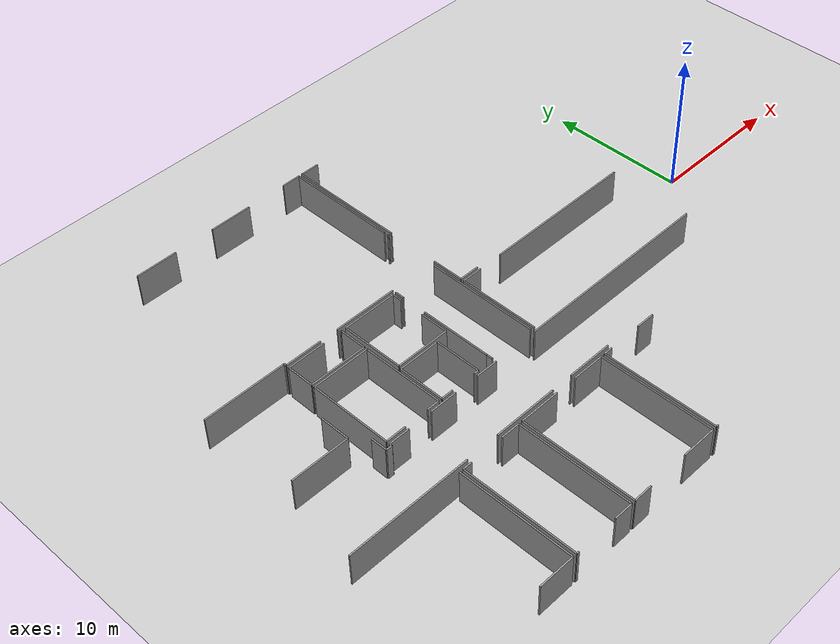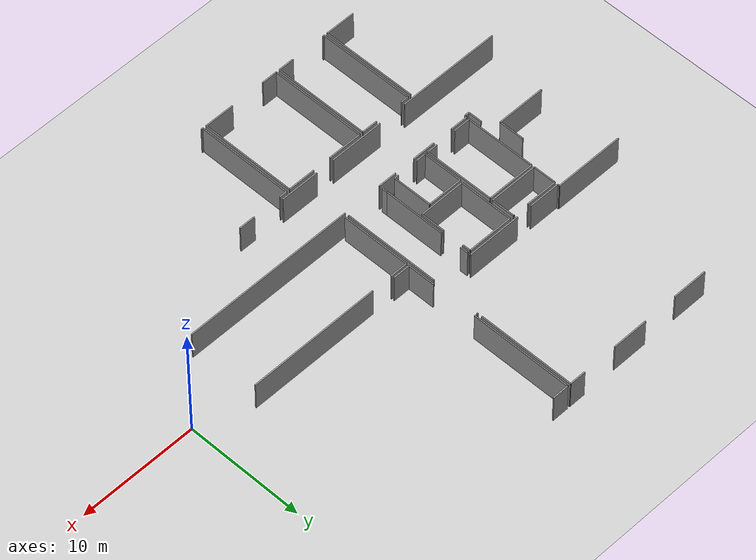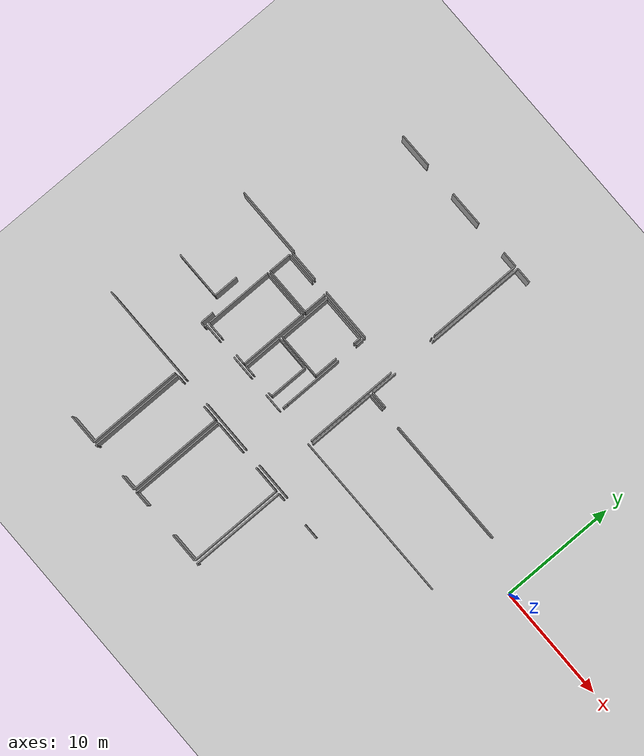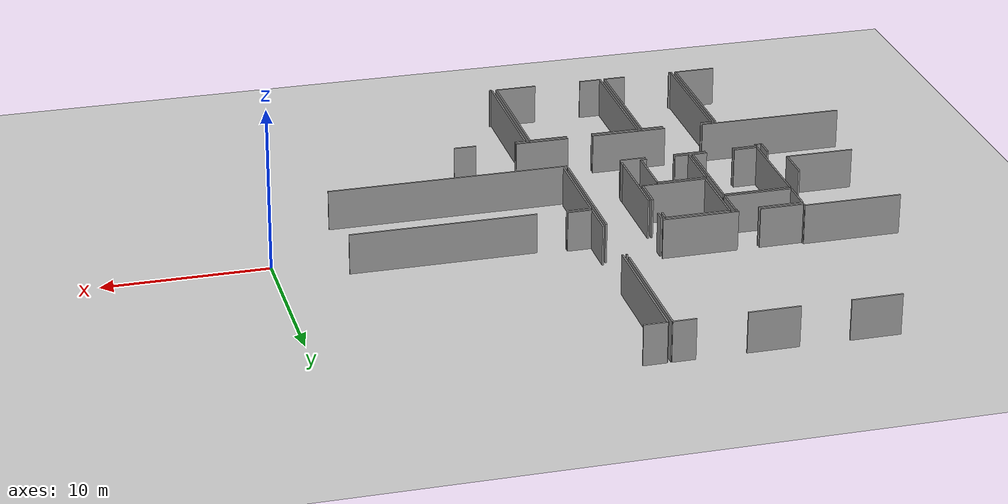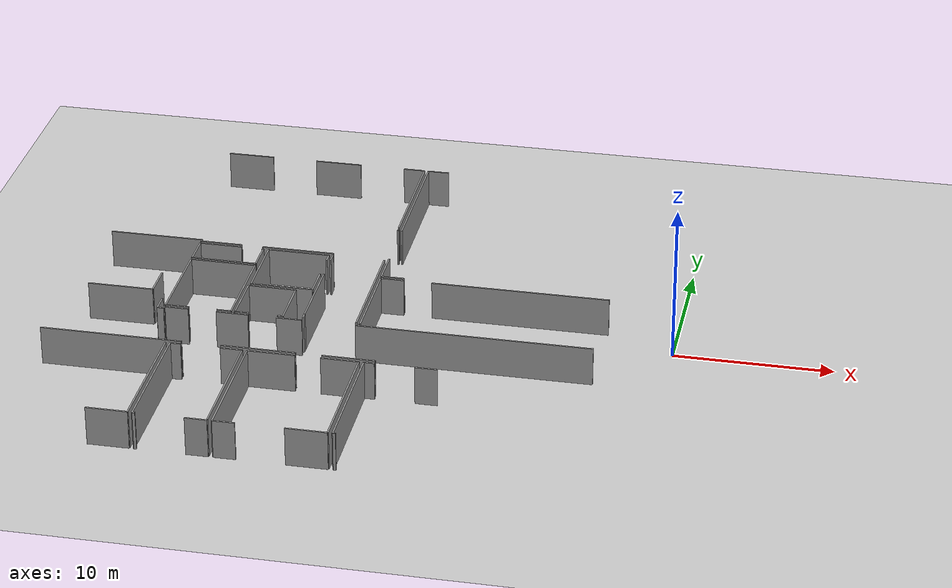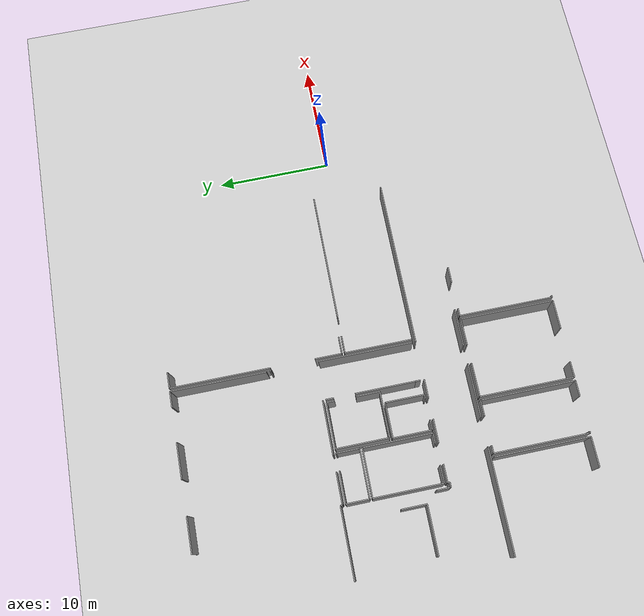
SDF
<sdf version="1.6">
 <world name="default">
  <model name="ground_plane">
   <static>1</static>
   <link name="link">
    <collision name="collision">
     <geometry><plane><normal>0 0 1</normal><size>100 100</size></plane></geometry>
     <surface><friction><ode><mu>100</mu><mu2>50</mu2></ode></friction></surface>
    </collision>
    <visual name="visual">
     <cast_shadows>0</cast_shadows>
     <geometry><plane><normal>0 0 1</normal><size>100 100</size></plane></geometry>
     <material>
      <script><uri>file://media/materials/scripts/gazebo.material</uri><name>Gazebo/Grey</name></script>
     </material>
    </visual>
   </link>
  </model>
  <model name="50041174">
   <static>1</static>
   <link name="Wall_21">
    <collision name="Wall_21_Collision">
     <geometry><box><size>8.1987814166 0.1 2.5</size></box></geometry>
     <pose>4.0993907083 0 1.25 0 0 0</pose>
    </collision>
    <visual name="Wall_21_Visual">
     <pose>4.0993907083 0 1.25 0 0 0</pose>
     <geometry><box><size>8.1987814166 0.1 2.5</size></box></geometry>
     <material>
      <script><uri>file://media/materials/scripts/gazebo.material</uri><name>Gazebo/Grey</name></script>
      <ambient>1 1 1 1</ambient>
     </material>
    </visual>
    <pose>36.6991622239 -25.30972328 0 0 0 -1.57079632679</pose>
   </link>
   <link name="Wall_22">
    <collision name="Wall_22_Collision">
     <geometry><box><size>2.57781162732 0.1 2.5</size></box></geometry>
     <pose>1.28890581366 0 1.25 0 0 0</pose>
    </collision>
    <visual name="Wall_22_Visual">
     <pose>1.28890581366 0 1.25 0 0 0</pose>
     <geometry><box><size>2.57781162732 0.1 2.5</size></box></geometry>
     <material>
      <script><uri>file://media/materials/scripts/gazebo.material</uri><name>Gazebo/Grey</name></script>
      <ambient>1 1 1 1</ambient>
     </material>
    </visual>
    <pose>36.6991622239 -33.5085046966 0 0 0 3.14159265359</pose>
   </link>
   <link name="Wall_25">
    <collision name="Wall_25_Collision">
     <geometry><box><size>8.21769484641 0.1 2.5</size></box></geometry>
     <pose>4.1088474232 0 1.25 0 0 0</pose>
    </collision>
    <visual name="Wall_25_Visual">
     <pose>4.1088474232 0 1.25 0 0 0</pose>
     <geometry><box><size>8.21769484641 0.1 2.5</size></box></geometry>
     <material>
      <script><uri>file://media/materials/scripts/gazebo.material</uri><name>Gazebo/Grey</name></script>
      <ambient>1 1 1 1</ambient>
     </material>
    </visual>
    <pose>36.982863671 -33.5272911907 0 0 0 1.57079632679</pose>
   </link>
   <link name="Wall_26">
    <collision name="Wall_26_Collision">
     <geometry><box><size>0.662096978929 0.1 2.5</size></box></geometry>
     <pose>0.331048489464 0 1.25 0 0 0</pose>
    </collision>
    <visual name="Wall_26_Visual">
     <pose>0.331048489464 0 1.25 0 0 0</pose>
     <geometry><box><size>0.662096978929 0.1 2.5</size></box></geometry>
     <material>
      <script><uri>file://media/materials/scripts/gazebo.material</uri><name>Gazebo/Grey</name></script>
      <ambient>1 1 1 1</ambient>
     </material>
    </visual>
    <pose>36.982863671 -25.3095963442 0 0 0 0.0</pose>
   </link>
   <link name="Wall_27">
    <collision name="Wall_27_Collision">
     <geometry><box><size>1.37255648642 0.1 2.5</size></box></geometry>
     <pose>0.686278243209 0 1.25 0 0 0</pose>
    </collision>
    <visual name="Wall_27_Visual">
     <pose>0.686278243209 0 1.25 0 0 0</pose>
     <geometry><box><size>1.37255648642 0.1 2.5</size></box></geometry>
     <material>
      <script><uri>file://media/materials/scripts/gazebo.material</uri><name>Gazebo/Grey</name></script>
      <ambient>1 1 1 1</ambient>
     </material>
    </visual>
    <pose>40.1141152577 -25.3095963442 0 0 0 0.0</pose>
   </link>
   <link name="Wall_28">
    <collision name="Wall_28_Collision">
     <geometry><box><size>8.20842853516 0.1 2.5</size></box></geometry>
     <pose>4.10421426758 0 1.25 0 0 0</pose>
    </collision>
    <visual name="Wall_28_Visual">
     <pose>4.10421426758 0 1.25 0 0 0</pose>
     <geometry><box><size>8.20842853516 0.1 2.5</size></box></geometry>
     <material>
      <script><uri>file://media/materials/scripts/gazebo.material</uri><name>Gazebo/Grey</name></script>
      <ambient>1 1 1 1</ambient>
     </material>
    </visual>
    <pose>41.4866717441 -25.3095963442 0 0 0 -1.57079632679</pose>
   </link>
   <link name="Wall_29">
    <collision name="Wall_29_Collision">
     <geometry><box><size>1.36646356943 0.1 2.5</size></box></geometry>
     <pose>0.683231784717 0 1.25 0 0 0</pose>
    </collision>
    <visual name="Wall_29_Visual">
     <pose>0.683231784717 0 1.25 0 0 0</pose>
     <geometry><box><size>1.36646356943 0.1 2.5</size></box></geometry>
     <material>
      <script><uri>file://media/materials/scripts/gazebo.material</uri><name>Gazebo/Grey</name></script>
      <ambient>1 1 1 1</ambient>
     </material>
    </visual>
    <pose>41.4866717441 -33.5180248794 0 0 0 3.14159265359</pose>
   </link>
   <link name="Wall_30">
    <collision name="Wall_30_Collision">
     <geometry><box><size>0.16464278967 0.1 2.5</size></box></geometry>
     <pose>0.0823213948351 0 1.25 0 0 0</pose>
    </collision>
    <visual name="Wall_30_Visual">
     <pose>0.0823213948351 0 1.25 0 0 0</pose>
     <geometry><box><size>0.16464278967 0.1 2.5</size></box></geometry>
     <material>
      <script><uri>file://media/materials/scripts/gazebo.material</uri><name>Gazebo/Grey</name></script>
      <ambient>1 1 1 1</ambient>
     </material>
    </visual>
    <pose>37.1472454938 -33.5180248794 0 0 0 -3.08528159239</pose>
   </link>
   <link name="Wall_31">
    <collision name="Wall_31_Collision">
     <geometry><box><size>8.20500126936 0.1 2.5</size></box></geometry>
     <pose>4.10250063468 0 1.25 0 0 0</pose>
    </collision>
    <visual name="Wall_31_Visual">
     <pose>4.10250063468 0 1.25 0 0 0</pose>
     <geometry><box><size>8.20500126936 0.1 2.5</size></box></geometry>
     <material>
      <script><uri>file://media/materials/scripts/gazebo.material</uri><name>Gazebo/Grey</name></script>
      <ambient>1 1 1 1</ambient>
     </material>
    </visual>
    <pose>41.7788778878 -33.5200558517 0 0 0 1.57079632679</pose>
   </link>
   <link name="Wall_32">
    <collision name="Wall_32_Collision">
     <geometry><box><size>2.95443005839 0.1 2.5</size></box></geometry>
     <pose>1.4772150292 0 1.25 0 0 0</pose>
    </collision>
    <visual name="Wall_32_Visual">
     <pose>1.4772150292 0 1.25 0 0 0</pose>
     <geometry><box><size>2.95443005839 0.1 2.5</size></box></geometry>
     <material>
      <script><uri>file://media/materials/scripts/gazebo.material</uri><name>Gazebo/Grey</name></script>
      <ambient>1 1 1 1</ambient>
     </material>
    </visual>
    <pose>41.7788778878 -25.3150545824 0 0 0 0.0</pose>
   </link>
   <link name="Wall_33">
    <collision name="Wall_33_Collision">
     <geometry><box><size>2.35313531353 0.1 2.5</size></box></geometry>
     <pose>1.17656765677 0 1.25 0 0 0</pose>
    </collision>
    <visual name="Wall_33_Visual">
     <pose>1.17656765677 0 1.25 0 0 0</pose>
     <geometry><box><size>2.35313531353 0.1 2.5</size></box></geometry>
     <material>
      <script><uri>file://media/materials/scripts/gazebo.material</uri><name>Gazebo/Grey</name></script>
      <ambient>1 1 1 1</ambient>
     </material>
    </visual>
    <pose>46.3238131505 -25.3150545824 0 0 0 0.0</pose>
   </link>
   <link name="Wall_34">
    <collision name="Wall_34_Collision">
     <geometry><box><size>8.19345011424 0.1 2.5</size></box></geometry>
     <pose>4.09672505712 0 1.25 0 0 0</pose>
    </collision>
    <visual name="Wall_34_Visual">
     <pose>4.09672505712 0 1.25 0 0 0</pose>
     <geometry><box><size>8.19345011424 0.1 2.5</size></box></geometry>
     <material>
      <script><uri>file://media/materials/scripts/gazebo.material</uri><name>Gazebo/Grey</name></script>
      <ambient>1 1 1 1</ambient>
     </material>
    </visual>
    <pose>48.6769484641 -25.3150545824 0 0 0 -1.57079632679</pose>
   </link>
   <link name="Wall_35">
    <collision name="Wall_35_Collision">
     <geometry><box><size>2.56143691292 0.1 2.5</size></box></geometry>
     <pose>1.28071845646 0 1.25 0 0 0</pose>
    </collision>
    <visual name="Wall_35_Visual">
     <pose>1.28071845646 0 1.25 0 0 0</pose>
     <geometry><box><size>2.56143691292 0.1 2.5</size></box></geometry>
     <material>
      <script><uri>file://media/materials/scripts/gazebo.material</uri><name>Gazebo/Grey</name></script>
      <ambient>1 1 1 1</ambient>
     </material>
    </visual>
    <pose>48.6769484641 -33.5085046966 0 0 0 3.14159265359</pose>
   </link>
   <link name="Wall_36">
    <collision name="Wall_36_Collision">
     <geometry><box><size>1.36397376683 0.1 2.5</size></box></geometry>
     <pose>0.681986883416 0 1.25 0 0 0</pose>
    </collision>
    <visual name="Wall_36_Visual">
     <pose>0.681986883416 0 1.25 0 0 0</pose>
     <geometry><box><size>1.36397376683 0.1 2.5</size></box></geometry>
     <material>
      <script><uri>file://media/materials/scripts/gazebo.material</uri><name>Gazebo/Grey</name></script>
      <ambient>1 1 1 1</ambient>
     </material>
    </visual>
    <pose>43.1428027418 -33.5085046966 0 0 0 -3.13312380069</pose>
   </link>
   <link name="Wall_37">
    <collision name="Wall_37_Collision">
     <geometry><box><size>8.21997969028 0.1 2.5</size></box></geometry>
     <pose>4.10998984514 0 1.25 0 0 0</pose>
    </collision>
    <visual name="Wall_37_Visual">
     <pose>4.10998984514 0 1.25 0 0 0</pose>
     <geometry><box><size>8.21997969028 0.1 2.5</size></box></geometry>
     <material>
      <script><uri>file://media/materials/scripts/gazebo.material</uri><name>Gazebo/Grey</name></script>
      <ambient>1 1 1 1</ambient>
     </material>
    </visual>
    <pose>48.9748667174 -33.5262757045 0 0 0 1.57079632679</pose>
   </link>
   <link name="Wall_38">
    <collision name="Wall_38_Collision">
     <geometry><box><size>0.659050520437 0.1 2.5</size></box></geometry>
     <pose>0.329525260218 0 1.25 0 0 0</pose>
    </collision>
    <visual name="Wall_38_Visual">
     <pose>0.329525260218 0 1.25 0 0 0</pose>
     <geometry><box><size>0.659050520437 0.1 2.5</size></box></geometry>
     <material>
      <script><uri>file://media/materials/scripts/gazebo.material</uri><name>Gazebo/Grey</name></script>
      <ambient>1 1 1 1</ambient>
     </material>
    </visual>
    <pose>48.9748667174 -25.3062960142 0 0 0 0.0</pose>
   </link>
   <link name="Wall_39">
    <collision name="Wall_39_Collision">
     <geometry><box><size>1.38220360498 0.1 2.5</size></box></geometry>
     <pose>0.691101802488 0 1.25 0 0 0</pose>
    </collision>
    <visual name="Wall_39_Visual">
     <pose>0.691101802488 0 1.25 0 0 0</pose>
     <geometry><box><size>1.38220360498 0.1 2.5</size></box></geometry>
     <material>
      <script><uri>file://media/materials/scripts/gazebo.material</uri><name>Gazebo/Grey</name></script>
      <ambient>1 1 1 1</ambient>
     </material>
    </visual>
    <pose>52.0983752221 -25.3062960142 0 0 0 0.0</pose>
   </link>
   <link name="Wall_42">
    <collision name="Wall_42_Collision">
     <geometry><box><size>0.166533780676 0.1 2.5</size></box></geometry>
     <pose>0.0832668903378 0 1.25 0 0 0</pose>
    </collision>
    <visual name="Wall_42_Visual">
     <pose>0.0832668903378 0 1.25 0 0 0</pose>
     <geometry><box><size>0.166533780676 0.1 2.5</size></box></geometry>
     <material>
      <script><uri>file://media/materials/scripts/gazebo.material</uri><name>Gazebo/Grey</name></script>
      <ambient>1 1 1 1</ambient>
     </material>
    </visual>
    <pose>49.1412795126 -33.519928916 0 0 0 -3.10347230401</pose>
   </link>
   <link name="Wall_98">
    <collision name="Wall_98_Collision">
     <geometry><box><size>3.31657781163 0.1 2.5</size></box></geometry>
     <pose>1.65828890581 0 1.25 0 0 0</pose>
    </collision>
    <visual name="Wall_98_Visual">
     <pose>1.65828890581 0 1.25 0 0 0</pose>
     <geometry><box><size>3.31657781163 0.1 2.5</size></box></geometry>
     <material>
      <script><uri>file://media/materials/scripts/gazebo.material</uri><name>Gazebo/Grey</name></script>
      <ambient>1 1 1 1</ambient>
     </material>
    </visual>
    <pose>49.6342980452 -25.0140898705 0 0 0 3.14159265359</pose>
   </link>
   <link name="Wall_99">
    <collision name="Wall_99_Collision">
     <geometry><box><size>4.65473470424 0.1 2.5</size></box></geometry>
     <pose>2.32736735212 0 1.25 0 0 0</pose>
    </collision>
    <visual name="Wall_99_Visual">
     <pose>2.32736735212 0 1.25 0 0 0</pose>
     <geometry><box><size>4.65473470424 0.1 2.5</size></box></geometry>
     <material>
      <script><uri>file://media/materials/scripts/gazebo.material</uri><name>Gazebo/Grey</name></script>
      <ambient>1 1 1 1</ambient>
     </material>
    </visual>
    <pose>44.727849708 -25.0140898705 0 0 0 3.14159265359</pose>
   </link>
   <link name="Wall_100">
    <collision name="Wall_100_Collision">
     <geometry><box><size>8.90365575019 0.1 2.5</size></box></geometry>
     <pose>4.4518278751 0 1.25 0 0 0</pose>
    </collision>
    <visual name="Wall_100_Visual">
     <pose>4.4518278751 0 1.25 0 0 0</pose>
     <geometry><box><size>8.90365575019 0.1 2.5</size></box></geometry>
     <material>
      <script><uri>file://media/materials/scripts/gazebo.material</uri><name>Gazebo/Grey</name></script>
      <ambient>1 1 1 1</ambient>
     </material>
    </visual>
    <pose>37.6297283575 -25.0140898705 0 0 0 3.14159265359</pose>
   </link>
   <link name="Wall_109">
    <collision name="Wall_109_Collision">
     <geometry><box><size>0.414953033765 0.1 2.5</size></box></geometry>
     <pose>0.207476516882 0 1.25 0 0 0</pose>
    </collision>
    <visual name="Wall_109_Visual">
     <pose>0.207476516882 0 1.25 0 0 0</pose>
     <geometry><box><size>0.414953033765 0.1 2.5</size></box></geometry>
     <material>
      <script><uri>file://media/materials/scripts/gazebo.material</uri><name>Gazebo/Grey</name></script>
      <ambient>1 1 1 1</ambient>
     </material>
    </visual>
    <pose>35.0392231531 -21.2748159431 0 0 0 0.0</pose>
   </link>
   <link name="Wall_110">
    <collision name="Wall_110_Collision">
     <geometry><box><size>0.187484133029 0.1 2.5</size></box></geometry>
     <pose>0.0937420665143 0 1.25 0 0 0</pose>
    </collision>
    <visual name="Wall_110_Visual">
     <pose>0.0937420665143 0 1.25 0 0 0</pose>
     <geometry><box><size>0.187484133029 0.1 2.5</size></box></geometry>
     <material>
      <script><uri>file://media/materials/scripts/gazebo.material</uri><name>Gazebo/Grey</name></script>
      <ambient>1 1 1 1</ambient>
     </material>
    </visual>
    <pose>35.4541761868 -21.2748159431 0 0 0 1.57079632679</pose>
   </link>
   <link name="Wall_111">
    <collision name="Wall_111_Collision">
     <geometry><box><size>1.51865955826 0.1 2.5</size></box></geometry>
     <pose>0.759329779132 0 1.25 0 0 0</pose>
    </collision>
    <visual name="Wall_111_Visual">
     <pose>0.759329779132 0 1.25 0 0 0</pose>
     <geometry><box><size>1.51865955826 0.1 2.5</size></box></geometry>
     <material>
      <script><uri>file://media/materials/scripts/gazebo.material</uri><name>Gazebo/Grey</name></script>
      <ambient>1 1 1 1</ambient>
     </material>
    </visual>
    <pose>35.4541761868 -21.0873318101 0 0 0 0.0</pose>
   </link>
   <link name="Wall_112">
    <collision name="Wall_112_Collision">
     <geometry><box><size>2.01815181518 0.1 2.5</size></box></geometry>
     <pose>1.00907590759 0 1.25 0 0 0</pose>
    </collision>
    <visual name="Wall_112_Visual">
     <pose>1.00907590759 0 1.25 0 0 0</pose>
     <geometry><box><size>2.01815181518 0.1 2.5</size></box></geometry>
     <material>
      <script><uri>file://media/materials/scripts/gazebo.material</uri><name>Gazebo/Grey</name></script>
      <ambient>1 1 1 1</ambient>
     </material>
    </visual>
    <pose>38.7405432851 -21.0873318101 0 0 0 0.0</pose>
   </link>
   <link name="Wall_113">
    <collision name="Wall_113_Collision">
     <geometry><box><size>1.60853008378 0.1 2.5</size></box></geometry>
     <pose>0.804265041889 0 1.25 0 0 0</pose>
    </collision>
    <visual name="Wall_113_Visual">
     <pose>0.804265041889 0 1.25 0 0 0</pose>
     <geometry><box><size>1.60853008378 0.1 2.5</size></box></geometry>
     <material>
      <script><uri>file://media/materials/scripts/gazebo.material</uri><name>Gazebo/Grey</name></script>
      <ambient>1 1 1 1</ambient>
     </material>
    </visual>
    <pose>42.5489972074 -21.0873318101 0 0 0 0.0</pose>
   </link>
   <link name="Wall_114">
    <collision name="Wall_114_Collision">
     <geometry><box><size>14.7121096725 0.1 2.5</size></box></geometry>
     <pose>7.35605483625 0 1.25 0 0 0</pose>
    </collision>
    <visual name="Wall_114_Visual">
     <pose>7.35605483625 0 1.25 0 0 0</pose>
     <geometry><box><size>14.7121096725 0.1 2.5</size></box></geometry>
     <material>
      <script><uri>file://media/materials/scripts/gazebo.material</uri><name>Gazebo/Grey</name></script>
      <ambient>1 1 1 1</ambient>
     </material>
    </visual>
    <pose>47.5062198528 -21.0873318101 0 0 0 0.0</pose>
   </link>
   <link name="Wall_136">
    <collision name="Wall_136_Collision">
     <geometry><box><size>2.15486164001 0.1 2.5</size></box></geometry>
     <pose>1.07743082001 0 1.25 0 0 0</pose>
    </collision>
    <visual name="Wall_136_Visual">
     <pose>1.07743082001 0 1.25 0 0 0</pose>
     <geometry><box><size>2.15486164001 0.1 2.5</size></box></geometry>
     <material>
      <script><uri>file://media/materials/scripts/gazebo.material</uri><name>Gazebo/Grey</name></script>
      <ambient>1 1 1 1</ambient>
     </material>
    </visual>
    <pose>34.1463569434 -16.9455445545 0 0 0 -1.57079632679</pose>
   </link>
   <link name="Wall_137">
    <collision name="Wall_137_Collision">
     <geometry><box><size>4.15917745621 0.1 2.5</size></box></geometry>
     <pose>2.0795887281 0 1.25 0 0 0</pose>
    </collision>
    <visual name="Wall_137_Visual">
     <pose>2.0795887281 0 1.25 0 0 0</pose>
     <geometry><box><size>4.15917745621 0.1 2.5</size></box></geometry>
     <material>
      <script><uri>file://media/materials/scripts/gazebo.material</uri><name>Gazebo/Grey</name></script>
      <ambient>1 1 1 1</ambient>
     </material>
    </visual>
    <pose>34.1463569434 -19.1004061945 0 0 0 3.14159265359</pose>
   </link>
   <link name="Wall_140">
    <collision name="Wall_140_Collision">
     <geometry><box><size>1.13645595329 0.1 2.5</size></box></geometry>
     <pose>0.568227976644 0 1.25 0 0 0</pose>
    </collision>
    <visual name="Wall_140_Visual">
     <pose>0.568227976644 0 1.25 0 0 0</pose>
     <geometry><box><size>1.13645595329 0.1 2.5</size></box></geometry>
     <material>
      <script><uri>file://media/materials/scripts/gazebo.material</uri><name>Gazebo/Grey</name></script>
      <ambient>1 1 1 1</ambient>
     </material>
    </visual>
    <pose>35.0474739782 -20.0939324702 0 0 0 -1.57079632679</pose>
   </link>
   <link name="Wall_142">
    <collision name="Wall_142_Collision">
     <geometry><box><size>5.96788525006 0.1 2.5</size></box></geometry>
     <pose>2.98394262503 0 1.25 0 0 0</pose>
    </collision>
    <visual name="Wall_142_Visual">
     <pose>2.98394262503 0 1.25 0 0 0</pose>
     <geometry><box><size>5.96788525006 0.1 2.5</size></box></geometry>
     <material>
      <script><uri>file://media/materials/scripts/gazebo.material</uri><name>Gazebo/Grey</name></script>
      <ambient>1 1 1 1</ambient>
     </material>
    </visual>
    <pose>35.4685199289 -20.8391723788 0 0 0 1.57079632679</pose>
   </link>
   <link name="Wall_143">
    <collision name="Wall_143_Collision">
     <geometry><box><size>4.15714648388 0.1 2.5</size></box></geometry>
     <pose>2.07857324194 0 1.25 0 0 0</pose>
    </collision>
    <visual name="Wall_143_Visual">
     <pose>2.07857324194 0 1.25 0 0 0</pose>
     <geometry><box><size>4.15714648388 0.1 2.5</size></box></geometry>
     <material>
      <script><uri>file://media/materials/scripts/gazebo.material</uri><name>Gazebo/Grey</name></script>
      <ambient>1 1 1 1</ambient>
     </material>
    </visual>
    <pose>35.4685199289 -14.8712871287 0 0 0 0.0</pose>
   </link>
   <link name="Wall_144">
    <collision name="Wall_144_Collision">
     <geometry><box><size>5.95811119573 0.1 2.5</size></box></geometry>
     <pose>2.97905559787 0 1.25 0 0 0</pose>
    </collision>
    <visual name="Wall_144_Visual">
     <pose>2.97905559787 0 1.25 0 0 0</pose>
     <geometry><box><size>5.95811119573 0.1 2.5</size></box></geometry>
     <material>
      <script><uri>file://media/materials/scripts/gazebo.material</uri><name>Gazebo/Grey</name></script>
      <ambient>1 1 1 1</ambient>
     </material>
    </visual>
    <pose>39.6256664128 -14.8712871287 0 0 0 -1.57079632679</pose>
   </link>
   <link name="Wall_145">
    <collision name="Wall_145_Collision">
     <geometry><box><size>0.905305915207 0.1 2.5</size></box></geometry>
     <pose>0.452652957603 0 1.25 0 0 0</pose>
    </collision>
    <visual name="Wall_145_Visual">
     <pose>0.452652957603 0 1.25 0 0 0</pose>
     <geometry><box><size>0.905305915207 0.1 2.5</size></box></geometry>
     <material>
      <script><uri>file://media/materials/scripts/gazebo.material</uri><name>Gazebo/Grey</name></script>
      <ambient>1 1 1 1</ambient>
     </material>
    </visual>
    <pose>39.6256664128 -20.8293983244 0 0 0 3.14159265359</pose>
   </link>
   <link name="Wall_146">
    <collision name="Wall_146_Collision">
     <geometry><box><size>1.4820073516 0.1 2.5</size></box></geometry>
     <pose>0.741003675798 0 1.25 0 0 0</pose>
    </collision>
    <visual name="Wall_146_Visual">
     <pose>0.741003675798 0 1.25 0 0 0</pose>
     <geometry><box><size>1.4820073516 0.1 2.5</size></box></geometry>
     <material>
      <script><uri>file://media/materials/scripts/gazebo.material</uri><name>Gazebo/Grey</name></script>
      <ambient>1 1 1 1</ambient>
     </material>
    </visual>
    <pose>36.9504950495 -20.8293983244 0 0 0 -3.13499746014</pose>
   </link>
   <link name="Wall_147">
    <collision name="Wall_147_Collision">
     <geometry><box><size>3.35770500127 0.1 2.5</size></box></geometry>
     <pose>1.67885250063 0 1.25 0 0 0</pose>
    </collision>
    <visual name="Wall_147_Visual">
     <pose>1.67885250063 0 1.25 0 0 0</pose>
     <geometry><box><size>3.35770500127 0.1 2.5</size></box></geometry>
     <material>
      <script><uri>file://media/materials/scripts/gazebo.material</uri><name>Gazebo/Grey</name></script>
      <ambient>1 1 1 1</ambient>
     </material>
    </visual>
    <pose>39.8723026149 -20.8368875349 0 0 0 1.57079632679</pose>
   </link>
   <link name="Wall_148">
    <collision name="Wall_148_Collision">
     <geometry><box><size>3.02843361259 0.1 2.5</size></box></geometry>
     <pose>1.5142168063 0 1.25 0 0 0</pose>
    </collision>
    <visual name="Wall_148_Visual">
     <pose>1.5142168063 0 1.25 0 0 0</pose>
     <geometry><box><size>3.02843361259 0.1 2.5</size></box></geometry>
     <material>
      <script><uri>file://media/materials/scripts/gazebo.material</uri><name>Gazebo/Grey</name></script>
      <ambient>1 1 1 1</ambient>
     </material>
    </visual>
    <pose>39.8723026149 -17.4791825336 0 0 0 0.0</pose>
   </link>
   <link name="Wall_149">
    <collision name="Wall_149_Collision">
     <geometry><box><size>3.35491241432 0.1 2.5</size></box></geometry>
     <pose>1.67745620716 0 1.25 0 0 0</pose>
    </collision>
    <visual name="Wall_149_Visual">
     <pose>1.67745620716 0 1.25 0 0 0</pose>
     <geometry><box><size>3.35491241432 0.1 2.5</size></box></geometry>
     <material>
      <script><uri>file://media/materials/scripts/gazebo.material</uri><name>Gazebo/Grey</name></script>
      <ambient>1 1 1 1</ambient>
     </material>
    </visual>
    <pose>42.9007362275 -17.4791825336 0 0 0 -1.57079632679</pose>
   </link>
   <link name="Wall_150">
    <collision name="Wall_150_Collision">
     <geometry><box><size>0.353516120843 0.1 2.5</size></box></geometry>
     <pose>0.176758060421 0 1.25 0 0 0</pose>
    </collision>
    <visual name="Wall_150_Visual">
     <pose>0.176758060421 0 1.25 0 0 0</pose>
     <geometry><box><size>0.353516120843 0.1 2.5</size></box></geometry>
     <material>
      <script><uri>file://media/materials/scripts/gazebo.material</uri><name>Gazebo/Grey</name></script>
      <ambient>1 1 1 1</ambient>
     </material>
    </visual>
    <pose>42.9007362275 -20.834094948 0 0 0 3.14159265359</pose>
   </link>
   <link name="Wall_151">
    <collision name="Wall_151_Collision">
     <geometry><box><size>0.865071783424 0.1 2.5</size></box></geometry>
     <pose>0.432535891712 0 1.25 0 0 0</pose>
    </collision>
    <visual name="Wall_151_Visual">
     <pose>0.432535891712 0 1.25 0 0 0</pose>
     <geometry><box><size>0.865071783424 0.1 2.5</size></box></geometry>
     <material>
      <script><uri>file://media/materials/scripts/gazebo.material</uri><name>Gazebo/Grey</name></script>
      <ambient>1 1 1 1</ambient>
     </material>
    </visual>
    <pose>40.7373698908 -20.834094948 0 0 0 -3.13836449166</pose>
   </link>
   <link name="Wall_152">
    <collision name="Wall_152_Collision">
     <geometry><box><size>5.17936024372 0.1 2.5</size></box></geometry>
     <pose>2.58968012186 0 1.25 0 0 0</pose>
    </collision>
    <visual name="Wall_152_Visual">
     <pose>2.58968012186 0 1.25 0 0 0</pose>
     <geometry><box><size>5.17936024372 0.1 2.5</size></box></geometry>
     <material>
      <script><uri>file://media/materials/scripts/gazebo.material</uri><name>Gazebo/Grey</name></script>
      <ambient>1 1 1 1</ambient>
     </material>
    </visual>
    <pose>44.1494034019 -20.3412033511 0 0 0 1.57079632679</pose>
   </link>
   <link name="Wall_153">
    <collision name="Wall_153_Collision">
     <geometry><box><size>0.683295252602 0.1 2.5</size></box></geometry>
     <pose>0.341647626301 0 1.25 0 0 0</pose>
    </collision>
    <visual name="Wall_153_Visual">
     <pose>0.341647626301 0 1.25 0 0 0</pose>
     <geometry><box><size>0.683295252602 0.1 2.5</size></box></geometry>
     <material>
      <script><uri>file://media/materials/scripts/gazebo.material</uri><name>Gazebo/Grey</name></script>
      <ambient>1 1 1 1</ambient>
     </material>
    </visual>
    <pose>44.1494034019 -13.337395278 0 0 0 1.57079632679</pose>
   </link>
   <link name="Wall_154">
    <collision name="Wall_154_Collision">
     <geometry><box><size>8.11716171617 0.1 2.5</size></box></geometry>
     <pose>4.05858085809 0 1.25 0 0 0</pose>
    </collision>
    <visual name="Wall_154_Visual">
     <pose>4.05858085809 0 1.25 0 0 0</pose>
     <geometry><box><size>8.11716171617 0.1 2.5</size></box></geometry>
     <material>
      <script><uri>file://media/materials/scripts/gazebo.material</uri><name>Gazebo/Grey</name></script>
      <ambient>1 1 1 1</ambient>
     </material>
    </visual>
    <pose>47.4998730642 -12.6541000254 0 0 0 -1.57079632679</pose>
   </link>
   <link name="Wall_155">
    <collision name="Wall_155_Collision">
     <geometry><box><size>0.430166579474 0.1 2.5</size></box></geometry>
     <pose>0.215083289737 0 1.25 0 0 0</pose>
    </collision>
    <visual name="Wall_155_Visual">
     <pose>0.215083289737 0 1.25 0 0 0</pose>
     <geometry><box><size>0.430166579474 0.1 2.5</size></box></geometry>
     <material>
      <script><uri>file://media/materials/scripts/gazebo.material</uri><name>Gazebo/Grey</name></script>
      <ambient>1 1 1 1</ambient>
     </material>
    </visual>
    <pose>44.1590505204 -20.7712617416 0 0 0 1.59322467866</pose>
   </link>
   <link name="Wall_156">
    <collision name="Wall_156_Collision">
     <geometry><box><size>4.55090124397 0.1 2.5</size></box></geometry>
     <pose>2.27545062199 0 1.25 0 0 0</pose>
    </collision>
    <visual name="Wall_156_Visual">
     <pose>2.27545062199 0 1.25 0 0 0</pose>
     <geometry><box><size>4.55090124397 0.1 2.5</size></box></geometry>
     <material>
      <script><uri>file://media/materials/scripts/gazebo.material</uri><name>Gazebo/Grey</name></script>
      <ambient>1 1 1 1</ambient>
     </material>
    </visual>
    <pose>39.9667428281 -17.2335618177 0 0 0 1.57079632679</pose>
   </link>
   <link name="Wall_157">
    <collision name="Wall_157_Collision">
     <geometry><box><size>3.94249809596 0.1 2.5</size></box></geometry>
     <pose>1.97124904798 0 1.25 0 0 0</pose>
    </collision>
    <visual name="Wall_157_Visual">
     <pose>1.97124904798 0 1.25 0 0 0</pose>
     <geometry><box><size>3.94249809596 0.1 2.5</size></box></geometry>
     <material>
      <script><uri>file://media/materials/scripts/gazebo.material</uri><name>Gazebo/Grey</name></script>
      <ambient>1 1 1 1</ambient>
     </material>
    </visual>
    <pose>39.9667428281 -12.6826605737 0 0 0 0.0</pose>
   </link>
   <link name="Wall_158">
    <collision name="Wall_158_Collision">
     <geometry><box><size>0.684310738766 0.1 2.5</size></box></geometry>
     <pose>0.342155369383 0 1.25 0 0 0</pose>
    </collision>
    <visual name="Wall_158_Visual">
     <pose>0.342155369383 0 1.25 0 0 0</pose>
     <geometry><box><size>0.684310738766 0.1 2.5</size></box></geometry>
     <material>
      <script><uri>file://media/materials/scripts/gazebo.material</uri><name>Gazebo/Grey</name></script>
      <ambient>1 1 1 1</ambient>
     </material>
    </visual>
    <pose>43.9092409241 -12.6826605737 0 0 0 -1.57079632679</pose>
   </link>
   <link name="Wall_159">
    <collision name="Wall_159_Collision">
     <geometry><box><size>2.04848946433 0.1 2.5</size></box></geometry>
     <pose>1.02424473217 0 1.25 0 0 0</pose>
    </collision>
    <visual name="Wall_159_Visual">
     <pose>1.02424473217 0 1.25 0 0 0</pose>
     <geometry><box><size>2.04848946433 0.1 2.5</size></box></geometry>
     <material>
      <script><uri>file://media/materials/scripts/gazebo.material</uri><name>Gazebo/Grey</name></script>
      <ambient>1 1 1 1</ambient>
     </material>
    </visual>
    <pose>43.9092409241 -15.1775831429 0 0 0 -1.57079632679</pose>
   </link>
   <link name="Wall_160">
    <collision name="Wall_160_Collision">
     <geometry><box><size>3.94250520925 0.1 2.5</size></box></geometry>
     <pose>1.97125260462 0 1.25 0 0 0</pose>
    </collision>
    <visual name="Wall_160_Visual">
     <pose>1.97125260462 0 1.25 0 0 0</pose>
     <geometry><box><size>3.94250520925 0.1 2.5</size></box></geometry>
     <material>
      <script><uri>file://media/materials/scripts/gazebo.material</uri><name>Gazebo/Grey</name></script>
      <ambient>1 1 1 1</ambient>
     </material>
    </visual>
    <pose>43.9092409241 -17.2260726073 0 0 0 -3.13969304546</pose>
   </link>
   <link name="Wall_161">
    <collision name="Wall_161_Collision">
     <geometry><box><size>5.85707032242 0.1 2.5</size></box></geometry>
     <pose>2.92853516121 0 1.25 0 0 0</pose>
    </collision>
    <visual name="Wall_161_Visual">
     <pose>2.92853516121 0 1.25 0 0 0</pose>
     <geometry><box><size>5.85707032242 0.1 2.5</size></box></geometry>
     <material>
      <script><uri>file://media/materials/scripts/gazebo.material</uri><name>Gazebo/Grey</name></script>
      <ambient>1 1 1 1</ambient>
     </material>
    </visual>
    <pose>47.7562833206 -20.8405686723 0 0 0 1.57079632679</pose>
   </link>
   <link name="Wall_162">
    <collision name="Wall_162_Collision">
     <geometry><box><size>1.50279258695 0.1 2.5</size></box></geometry>
     <pose>0.751396293476 0 1.25 0 0 0</pose>
    </collision>
    <visual name="Wall_162_Visual">
     <pose>0.751396293476 0 1.25 0 0 0</pose>
     <geometry><box><size>1.50279258695 0.1 2.5</size></box></geometry>
     <material>
      <script><uri>file://media/materials/scripts/gazebo.material</uri><name>Gazebo/Grey</name></script>
      <ambient>1 1 1 1</ambient>
     </material>
    </visual>
    <pose>47.7562833206 -14.9834983498 0 0 0 0.0</pose>
   </link>
   <link name="Wall_163">
    <collision name="Wall_163_Collision">
     <geometry><box><size>11.220106626 0.1 2.5</size></box></geometry>
     <pose>5.61005331302 0 1.25 0 0 0</pose>
    </collision>
    <visual name="Wall_163_Visual">
     <pose>5.61005331302 0 1.25 0 0 0</pose>
     <geometry><box><size>11.220106626 0.1 2.5</size></box></geometry>
     <material>
      <script><uri>file://media/materials/scripts/gazebo.material</uri><name>Gazebo/Grey</name></script>
      <ambient>1 1 1 1</ambient>
     </material>
    </visual>
    <pose>51.0331302361 -14.9834983498 0 0 0 0.0</pose>
   </link>
   <link name="Wall_255">
    <collision name="Wall_255_Collision">
     <geometry><box><size>3.01282051282 0.1 2.5</size></box></geometry>
     <pose>1.50641025641 0 1.25 0 0 0</pose>
    </collision>
    <visual name="Wall_255_Visual">
     <pose>1.50641025641 0 1.25 0 0 0</pose>
     <geometry><box><size>3.01282051282 0.1 2.5</size></box></geometry>
     <material>
      <script><uri>file://media/materials/scripts/gazebo.material</uri><name>Gazebo/Grey</name></script>
      <ambient>1 1 1 1</ambient>
     </material>
    </visual>
    <pose>34.1378522468 -0.005585173902 0 0 0 0.0</pose>
   </link>
   <link name="Wall_256">
    <collision name="Wall_256_Collision">
     <geometry><box><size>3.06765676568 0.1 2.5</size></box></geometry>
     <pose>1.53382838284 0 1.25 0 0 0</pose>
    </collision>
    <visual name="Wall_256_Visual">
     <pose>1.53382838284 0 1.25 0 0 0</pose>
     <geometry><box><size>3.06765676568 0.1 2.5</size></box></geometry>
     <material>
      <script><uri>file://media/materials/scripts/gazebo.material</uri><name>Gazebo/Grey</name></script>
      <ambient>1 1 1 1</ambient>
     </material>
    </visual>
    <pose>40.0921553694 -0.005585173902 0 0 0 0.0</pose>
   </link>
   <link name="Wall_257">
    <collision name="Wall_257_Collision">
     <geometry><box><size>1.38385376999 0.1 2.5</size></box></geometry>
     <pose>0.691926884996 0 1.25 0 0 0</pose>
    </collision>
    <visual name="Wall_257_Visual">
     <pose>0.691926884996 0 1.25 0 0 0</pose>
     <geometry><box><size>1.38385376999 0.1 2.5</size></box></geometry>
     <material>
      <script><uri>file://media/materials/scripts/gazebo.material</uri><name>Gazebo/Grey</name></script>
      <ambient>1 1 1 1</ambient>
     </material>
    </visual>
    <pose>46.1048489464 -0.005585173902 0 0 0 0.0</pose>
   </link>
   <link name="Wall_258">
    <collision name="Wall_258_Collision">
     <geometry><box><size>8.19433866464 0.1 2.5</size></box></geometry>
     <pose>4.09716933232 0 1.25 0 0 0</pose>
    </collision>
    <visual name="Wall_258_Visual">
     <pose>4.09716933232 0 1.25 0 0 0</pose>
     <geometry><box><size>8.19433866464 0.1 2.5</size></box></geometry>
     <material>
      <script><uri>file://media/materials/scripts/gazebo.material</uri><name>Gazebo/Grey</name></script>
      <ambient>1 1 1 1</ambient>
     </material>
    </visual>
    <pose>47.4887027164 -0.005585173902 0 0 0 -1.57079632679</pose>
   </link>
   <link name="Wall_266">
    <collision name="Wall_266_Collision">
     <geometry><box><size>0.110941863417 0.1 2.5</size></box></geometry>
     <pose>0.0554709317086 0 1.25 0 0 0</pose>
    </collision>
    <visual name="Wall_266_Visual">
     <pose>0.0554709317086 0 1.25 0 0 0</pose>
     <geometry><box><size>0.110941863417 0.1 2.5</size></box></geometry>
     <material>
      <script><uri>file://media/materials/scripts/gazebo.material</uri><name>Gazebo/Grey</name></script>
      <ambient>1 1 1 1</ambient>
     </material>
    </visual>
    <pose>47.5134551917 -8.49454176187 0 0 0 -1.57079632679</pose>
   </link>
   <link name="Wall_267">
    <collision name="Wall_267_Collision">
     <geometry><box><size>4.63048997207 0.1 2.5</size></box></geometry>
     <pose>2.31524498604 0 1.25 0 0 0</pose>
    </collision>
    <visual name="Wall_267_Visual">
     <pose>2.31524498604 0 1.25 0 0 0</pose>
     <geometry><box><size>4.63048997207 0.1 2.5</size></box></geometry>
     <material>
      <script><uri>file://media/materials/scripts/gazebo.material</uri><name>Gazebo/Grey</name></script>
      <ambient>1 1 1 1</ambient>
     </material>
    </visual>
    <pose>44.1420411272 -12.4098756029 0 0 0 3.14159265359</pose>
   </link>
   <link name="Wall_268">
    <collision name="Wall_268_Collision">
     <geometry><box><size>2.69014978421 0.1 2.5</size></box></geometry>
     <pose>1.3450748921 0 1.25 0 0 0</pose>
    </collision>
    <visual name="Wall_268_Visual">
     <pose>1.3450748921 0 1.25 0 0 0</pose>
     <geometry><box><size>2.69014978421 0.1 2.5</size></box></geometry>
     <material>
      <script><uri>file://media/materials/scripts/gazebo.material</uri><name>Gazebo/Grey</name></script>
      <ambient>1 1 1 1</ambient>
     </material>
    </visual>
    <pose>38.1632394009 -12.4098756029 0 0 0 3.14159265359</pose>
   </link>
   <link name="Wall_269">
    <collision name="Wall_269_Collision">
     <geometry><box><size>0.174663620208 0.1 2.5</size></box></geometry>
     <pose>0.0873318101041 0 1.25 0 0 0</pose>
    </collision>
    <visual name="Wall_269_Visual">
     <pose>0.0873318101041 0 1.25 0 0 0</pose>
     <geometry><box><size>0.174663620208 0.1 2.5</size></box></geometry>
     <material>
      <script><uri>file://media/materials/scripts/gazebo.material</uri><name>Gazebo/Grey</name></script>
      <ambient>1 1 1 1</ambient>
     </material>
    </visual>
    <pose>35.4730896167 -12.4098756029 0 0 0 1.57079632679</pose>
   </link>
   <link name="Wall_270">
    <collision name="Wall_270_Collision">
     <geometry><box><size>5.97359735974 0.1 2.5</size></box></geometry>
     <pose>2.98679867987 0 1.25 0 0 0</pose>
    </collision>
    <visual name="Wall_270_Visual">
     <pose>2.98679867987 0 1.25 0 0 0</pose>
     <geometry><box><size>5.97359735974 0.1 2.5</size></box></geometry>
     <material>
      <script><uri>file://media/materials/scripts/gazebo.material</uri><name>Gazebo/Grey</name></script>
      <ambient>1 1 1 1</ambient>
     </material>
    </visual>
    <pose>35.4730896167 -12.2352119827 0 0 0 3.14159265359</pose>
   </link>
   <link name="Wall_272">
    <collision name="Wall_272_Collision">
     <geometry><box><size>1.97347042397 0.1 2.5</size></box></geometry>
     <pose>0.986735211983 0 1.25 0 0 0</pose>
    </collision>
    <visual name="Wall_272_Visual">
     <pose>0.986735211983 0 1.25 0 0 0</pose>
     <geometry><box><size>1.97347042397 0.1 2.5</size></box></geometry>
     <material>
      <script><uri>file://media/materials/scripts/gazebo.material</uri><name>Gazebo/Grey</name></script>
      <ambient>1 1 1 1</ambient>
     </material>
    </visual>
    <pose>35.4705509012 -14.6448337141 0 0 0 1.57079632679</pose>
   </link>
   <link name="Wall_273">
    <collision name="Wall_273_Collision">
     <geometry><box><size>2.7173140391 0.1 2.5</size></box></geometry>
     <pose>1.35865701955 0 1.25 0 0 0</pose>
    </collision>
    <visual name="Wall_273_Visual">
     <pose>1.35865701955 0 1.25 0 0 0</pose>
     <geometry><box><size>2.7173140391 0.1 2.5</size></box></geometry>
     <material>
      <script><uri>file://media/materials/scripts/gazebo.material</uri><name>Gazebo/Grey</name></script>
      <ambient>1 1 1 1</ambient>
     </material>
    </visual>
    <pose>35.4705509012 -12.6713632902 0 0 0 0.0</pose>
   </link>
   <link name="Wall_274">
    <collision name="Wall_274_Collision">
     <geometry><box><size>0.0913937547601 0.1 2.5</size></box></geometry>
     <pose>0.04569687738 0 1.25 0 0 0</pose>
    </collision>
    <visual name="Wall_274_Visual">
     <pose>0.04569687738 0 1.25 0 0 0</pose>
     <geometry><box><size>0.0913937547601 0.1 2.5</size></box></geometry>
     <material>
      <script><uri>file://media/materials/scripts/gazebo.material</uri><name>Gazebo/Grey</name></script>
      <ambient>1 1 1 1</ambient>
     </material>
    </visual>
    <pose>39.5289413557 -12.6713632902 0 0 0 0.0</pose>
   </link>
   <link name="Wall_275">
    <collision name="Wall_275_Collision">
     <geometry><box><size>1.97448591013 0.1 2.5</size></box></geometry>
     <pose>0.987242955065 0 1.25 0 0 0</pose>
    </collision>
    <visual name="Wall_275_Visual">
     <pose>0.987242955065 0 1.25 0 0 0</pose>
     <geometry><box><size>1.97448591013 0.1 2.5</size></box></geometry>
     <material>
      <script><uri>file://media/materials/scripts/gazebo.material</uri><name>Gazebo/Grey</name></script>
      <ambient>1 1 1 1</ambient>
     </material>
    </visual>
    <pose>39.6203351104 -12.6713632902 0 0 0 -1.57079632679</pose>
   </link>
   <link name="Wall_276">
    <collision name="Wall_276_Collision">
     <geometry><box><size>4.14978433344 0.1 2.5</size></box></geometry>
     <pose>2.07489216672 0 1.25 0 0 0</pose>
    </collision>
    <visual name="Wall_276_Visual">
     <pose>2.07489216672 0 1.25 0 0 0</pose>
     <geometry><box><size>4.14978433344 0.1 2.5</size></box></geometry>
     <material>
      <script><uri>file://media/materials/scripts/gazebo.material</uri><name>Gazebo/Grey</name></script>
      <ambient>1 1 1 1</ambient>
     </material>
    </visual>
    <pose>39.6203351104 -14.6458492003 0 0 0 3.14134794541</pose>
   </link>
   <link name="Wall_277">
    <collision name="Wall_277_Collision">
     <geometry><box><size>2.32597105864 0.1 2.5</size></box></geometry>
     <pose>1.16298552932 0 1.25 0 0 0</pose>
    </collision>
    <visual name="Wall_277_Visual">
     <pose>1.16298552932 0 1.25 0 0 0</pose>
     <geometry><box><size>2.32597105864 0.1 2.5</size></box></geometry>
     <material>
      <script><uri>file://media/materials/scripts/gazebo.material</uri><name>Gazebo/Grey</name></script>
      <ambient>1 1 1 1</ambient>
     </material>
    </visual>
    <pose>47.755521706 -14.740035542 0 0 0 1.57079632679</pose>
   </link>
   <link name="Wall_278">
    <collision name="Wall_278_Collision">
     <geometry><box><size>8.57692307692 0.1 2.5</size></box></geometry>
     <pose>4.28846153846 0 1.25 0 0 0</pose>
    </collision>
    <visual name="Wall_278_Visual">
     <pose>4.28846153846 0 1.25 0 0 0</pose>
     <geometry><box><size>8.57692307692 0.1 2.5</size></box></geometry>
     <material>
      <script><uri>file://media/materials/scripts/gazebo.material</uri><name>Gazebo/Grey</name></script>
      <ambient>1 1 1 1</ambient>
     </material>
    </visual>
    <pose>47.755521706 -8.58745874587 0 0 0 1.57079632679</pose>
   </link>
   <link name="Wall_279">
    <collision name="Wall_279_Collision">
     <geometry><box><size>1.38893120081 0.1 2.5</size></box></geometry>
     <pose>0.694465600406 0 1.25 0 0 0</pose>
    </collision>
    <visual name="Wall_279_Visual">
     <pose>0.694465600406 0 1.25 0 0 0</pose>
     <geometry><box><size>1.38893120081 0.1 2.5</size></box></geometry>
     <material>
      <script><uri>file://media/materials/scripts/gazebo.material</uri><name>Gazebo/Grey</name></script>
      <ambient>1 1 1 1</ambient>
     </material>
    </visual>
    <pose>47.755521706 -0.0105356689515 0 0 0 0.0</pose>
   </link>
   <link name="Wall_287">
    <collision name="Wall_287_Collision">
     <geometry><box><size>1.48502162791 0.1 2.5</size></box></geometry>
     <pose>0.742510813953 0 1.25 0 0 0</pose>
    </collision>
    <visual name="Wall_287_Visual">
     <pose>0.742510813953 0 1.25 0 0 0</pose>
     <geometry><box><size>1.48502162791 0.1 2.5</size></box></geometry>
     <material>
      <script><uri>file://media/materials/scripts/gazebo.material</uri><name>Gazebo/Grey</name></script>
      <ambient>1 1 1 1</ambient>
     </material>
    </visual>
    <pose>49.2405432851 -14.7396547347 0 0 0 -3.14133622142</pose>
   </link>
   <pose>-66.5 16.7804645849 0 0 0 0</pose>
  </model>
 </world>
</sdf>
